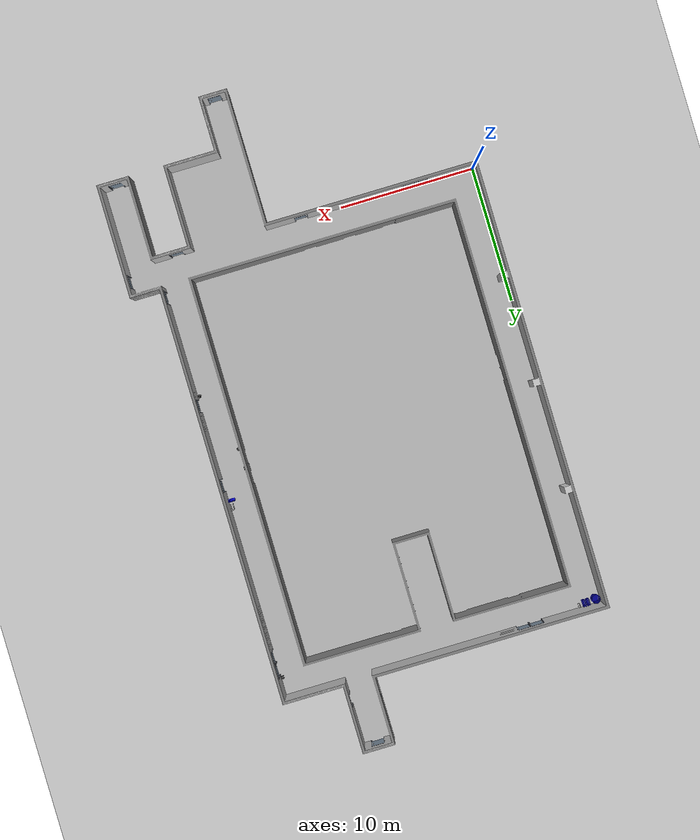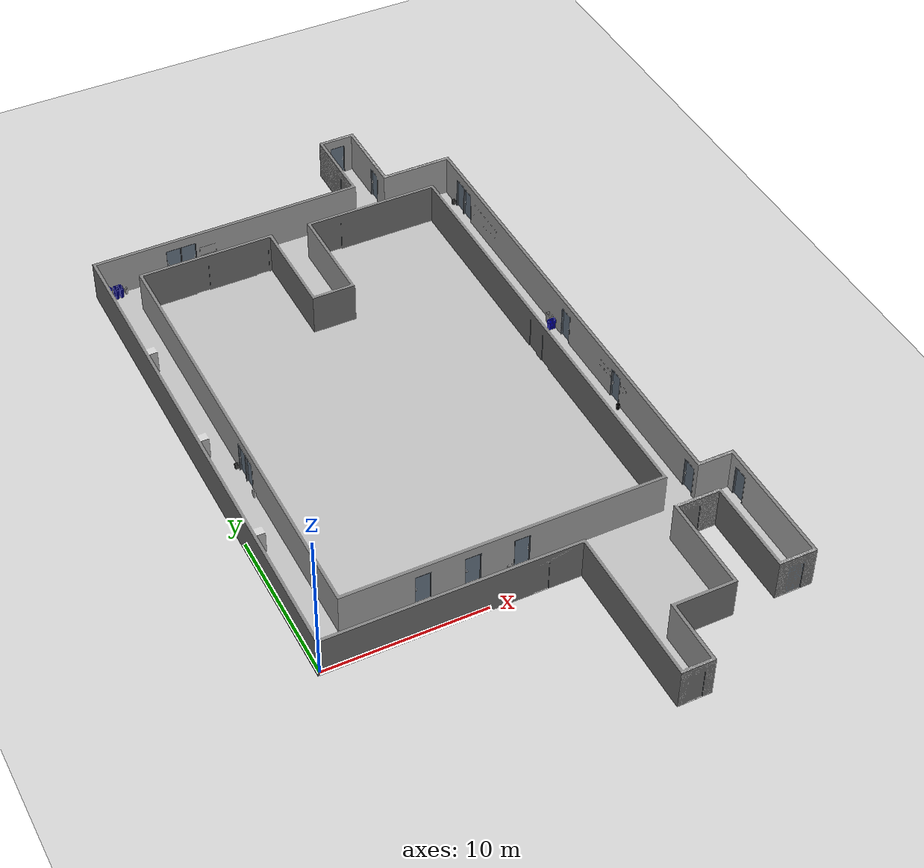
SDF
<?xml version="1.0"?>
<sdf version="1.4">
<world name="mtc5_basement">
  <include>
    <uri>model://sun</uri>
  </include>
  <include>
    <uri>model://ground_plane</uri>
  </include>
  <include>
    <uri>model://mtc5_basement</uri>
  </include>
</world>
</sdf>

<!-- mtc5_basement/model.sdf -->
<sdf version="1.5">
  <model name="mtc5_basement">
    <static>true</static>
    <link name="walls">
      <collision name="collision">
        <geometry>
          <mesh>
            <uri>model://mtc5_basement/meshes/mtc5_basement.dae</uri>
          </mesh>
        </geometry>
      </collision>
      <visual name="visual">
        <geometry>
          <mesh>
            <uri>model://mtc5_basement/meshes/mtc5_basement.dae</uri>
          </mesh>
        </geometry>
        <cast_shadows>false</cast_shadows>
      </visual>
    </link>
  </model>
</sdf>
